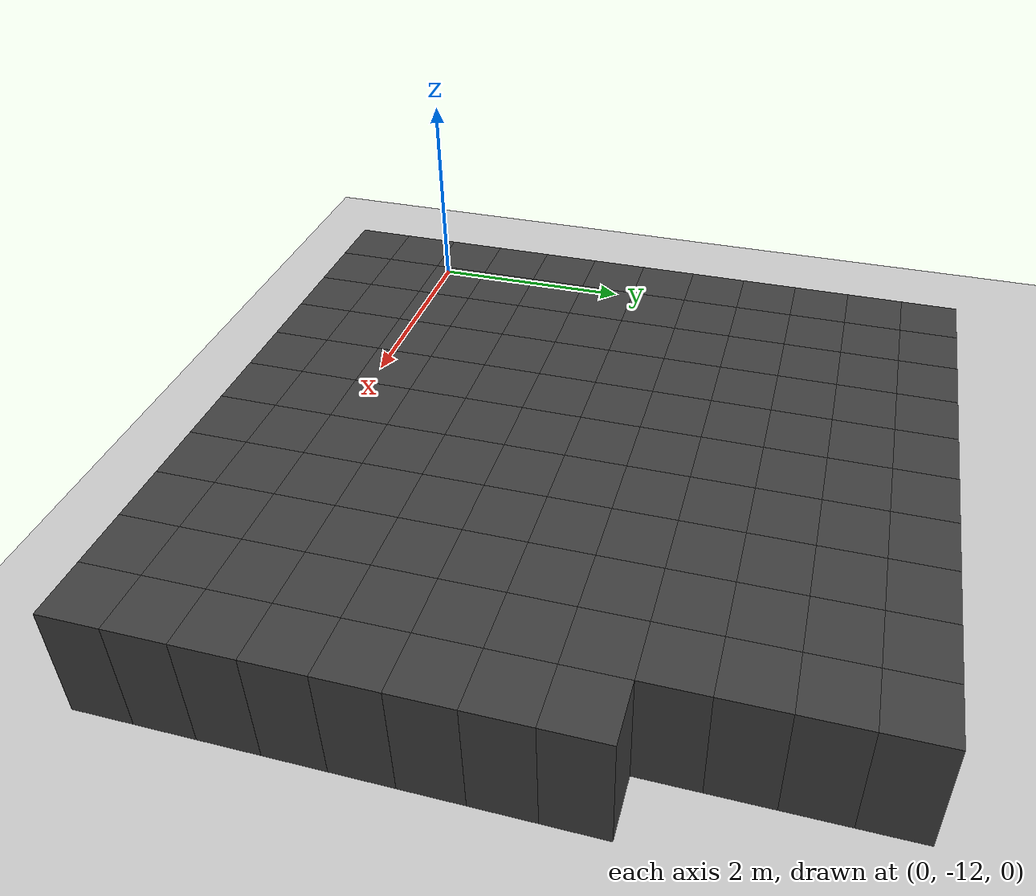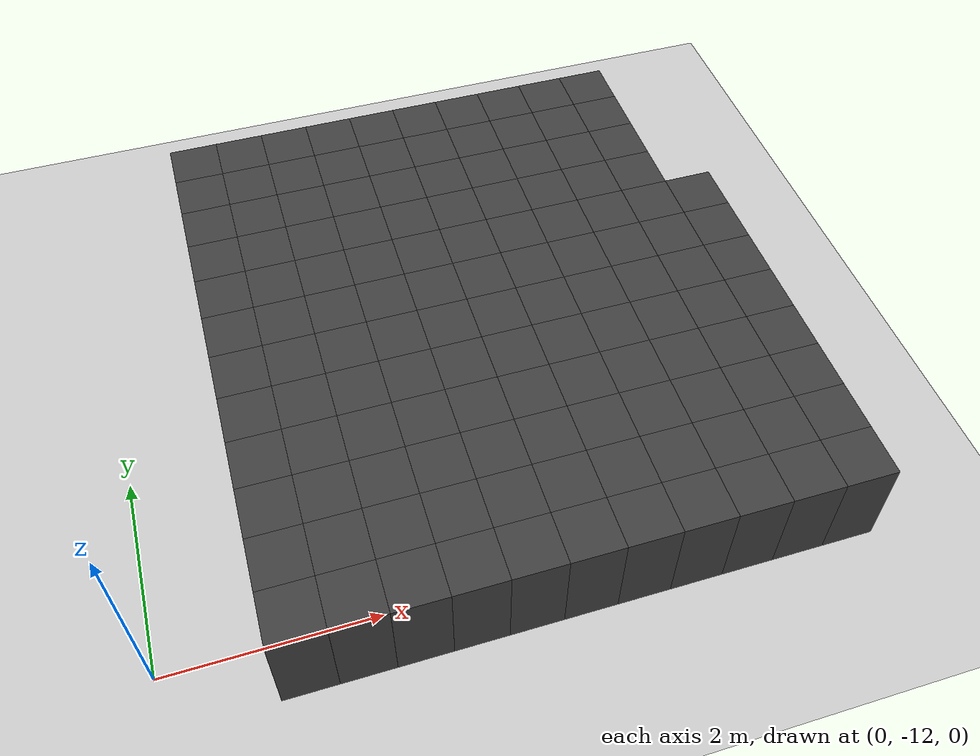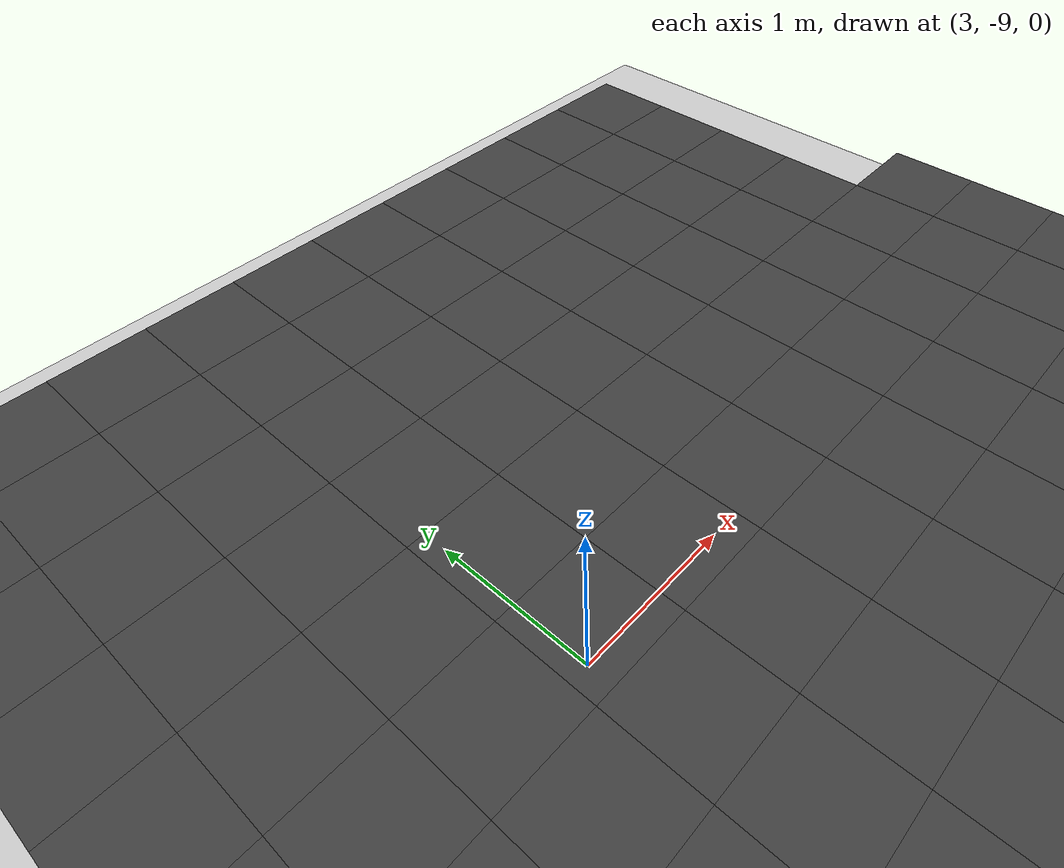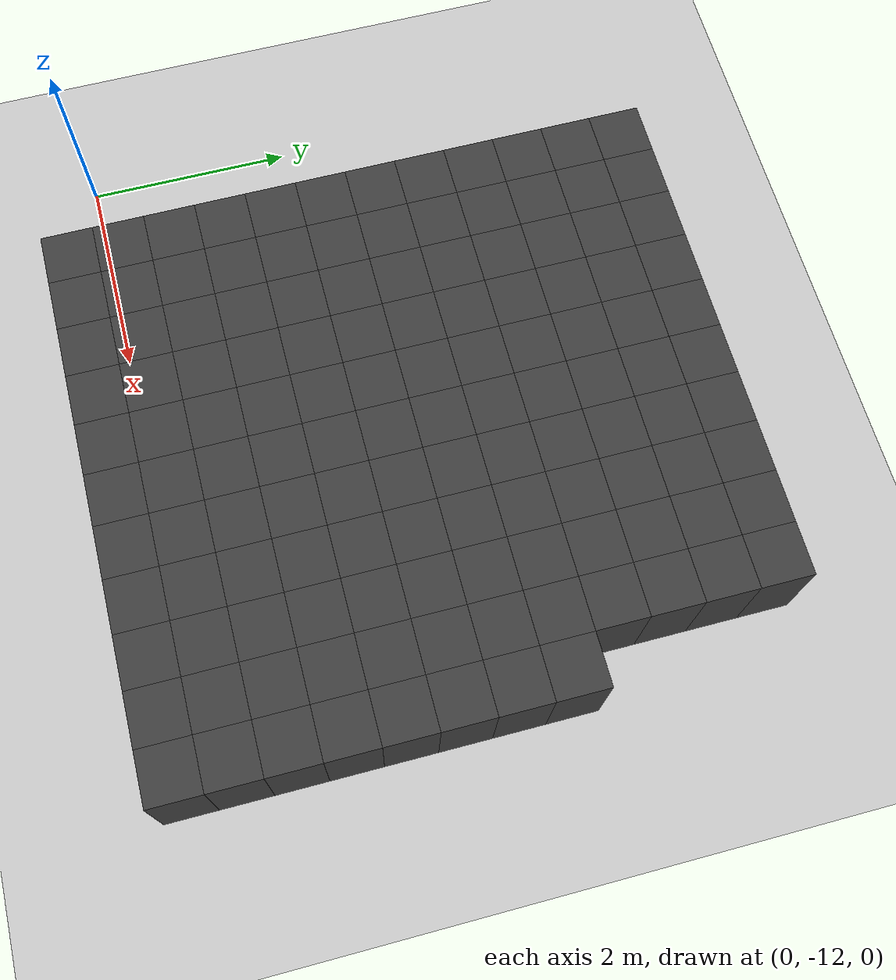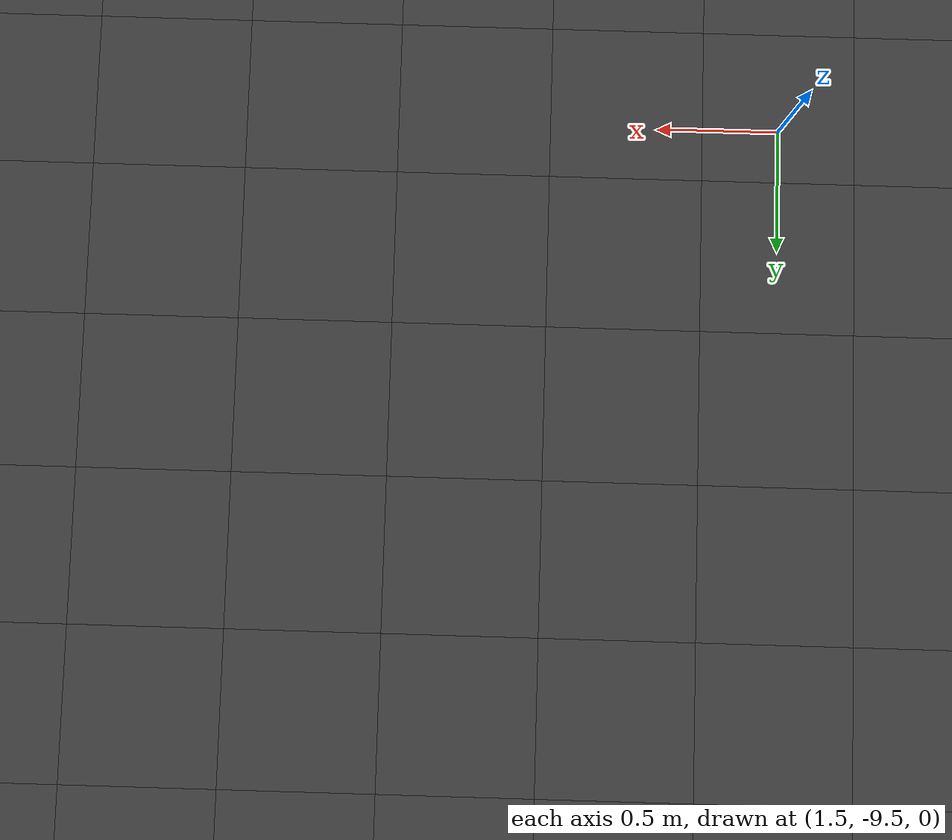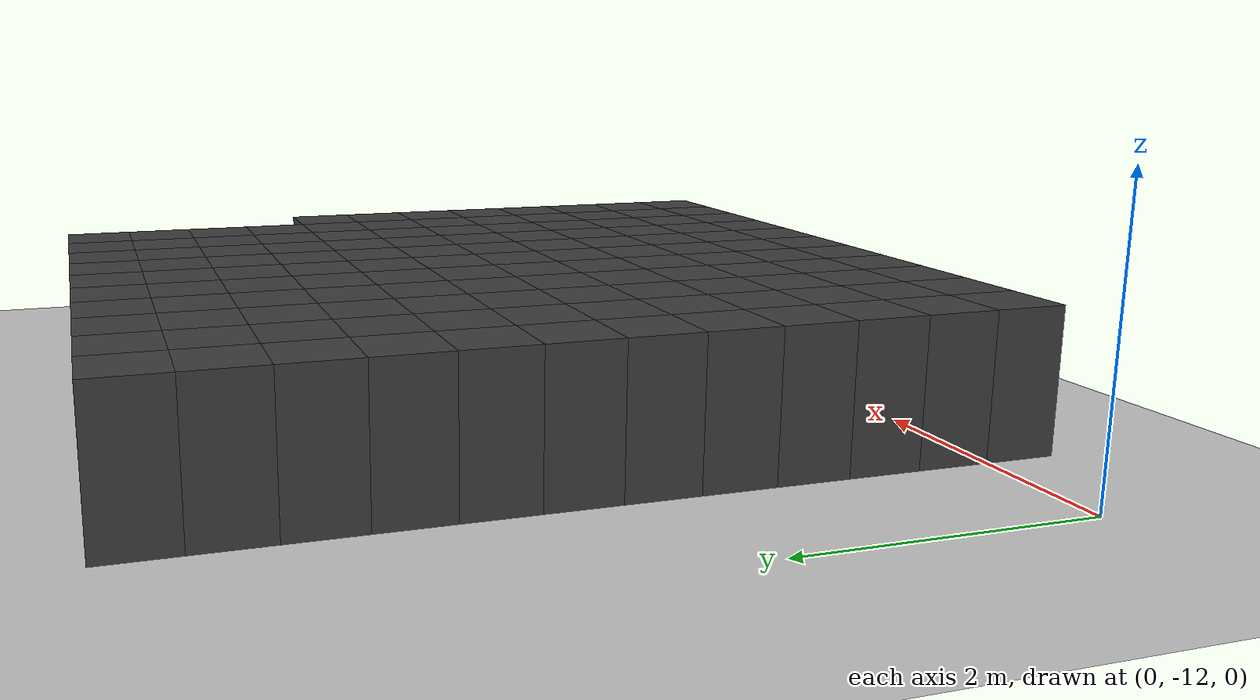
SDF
<sdf version="1.7">
 <world name="map_12356">
  <model name="ground_plane">
   <static>true</static>
   <link name="link">
    <collision name="collision">
     <geometry><plane><normal>0 0 1</normal><size>200 200</size></plane></geometry>
    </collision>
    <visual name="visual">
     <geometry><plane><normal>0 0 1</normal><size>200 200</size></plane></geometry>
     <material><ambient>0.8 0.8 0.8 1</ambient><diffuse>0.8 0.8 0.8 1</diffuse></material>
    </visual>
   </link>
  </model>
  <model name="maze_environment">
   <static>true</static>
   <link name="wall_1500">
    <pose>1.250 -6.750 0.500 0 0 0</pose>
    <collision name="col"><geometry><box><size>0.5 0.5 1.0</size></box></geometry></collision>
    <visual name="vis">
     <geometry><box><size>0.5 0.5 1.0</size></box></geometry>
     <material><ambient>0.15 0.15 0.15 1</ambient><diffuse>0.25 0.25 0.25 1</diffuse></material>
    </visual>
   </link>
   <link name="wall_1501">
    <pose>1.750 -6.750 0.500 0 0 0</pose>
    <collision name="col"><geometry><box><size>0.5 0.5 1.0</size></box></geometry></collision>
    <visual name="vis">
     <geometry><box><size>0.5 0.5 1.0</size></box></geometry>
     <material><ambient>0.15 0.15 0.15 1</ambient><diffuse>0.25 0.25 0.25 1</diffuse></material>
    </visual>
   </link>
   <link name="wall_1502">
    <pose>2.250 -6.750 0.500 0 0 0</pose>
    <collision name="col"><geometry><box><size>0.5 0.5 1.0</size></box></geometry></collision>
    <visual name="vis">
     <geometry><box><size>0.5 0.5 1.0</size></box></geometry>
     <material><ambient>0.15 0.15 0.15 1</ambient><diffuse>0.25 0.25 0.25 1</diffuse></material>
    </visual>
   </link>
   <link name="wall_1503">
    <pose>2.750 -6.750 0.500 0 0 0</pose>
    <collision name="col"><geometry><box><size>0.5 0.5 1.0</size></box></geometry></collision>
    <visual name="vis">
     <geometry><box><size>0.5 0.5 1.0</size></box></geometry>
     <material><ambient>0.15 0.15 0.15 1</ambient><diffuse>0.25 0.25 0.25 1</diffuse></material>
    </visual>
   </link>
   <link name="wall_1504">
    <pose>3.250 -6.750 0.500 0 0 0</pose>
    <collision name="col"><geometry><box><size>0.5 0.5 1.0</size></box></geometry></collision>
    <visual name="vis">
     <geometry><box><size>0.5 0.5 1.0</size></box></geometry>
     <material><ambient>0.15 0.15 0.15 1</ambient><diffuse>0.25 0.25 0.25 1</diffuse></material>
    </visual>
   </link>
   <link name="wall_1505">
    <pose>3.750 -6.750 0.500 0 0 0</pose>
    <collision name="col"><geometry><box><size>0.5 0.5 1.0</size></box></geometry></collision>
    <visual name="vis">
     <geometry><box><size>0.5 0.5 1.0</size></box></geometry>
     <material><ambient>0.15 0.15 0.15 1</ambient><diffuse>0.25 0.25 0.25 1</diffuse></material>
    </visual>
   </link>
   <link name="wall_1506">
    <pose>4.250 -6.750 0.500 0 0 0</pose>
    <collision name="col"><geometry><box><size>0.5 0.5 1.0</size></box></geometry></collision>
    <visual name="vis">
     <geometry><box><size>0.5 0.5 1.0</size></box></geometry>
     <material><ambient>0.15 0.15 0.15 1</ambient><diffuse>0.25 0.25 0.25 1</diffuse></material>
    </visual>
   </link>
   <link name="wall_1507">
    <pose>4.750 -6.750 0.500 0 0 0</pose>
    <collision name="col"><geometry><box><size>0.5 0.5 1.0</size></box></geometry></collision>
    <visual name="vis">
     <geometry><box><size>0.5 0.5 1.0</size></box></geometry>
     <material><ambient>0.15 0.15 0.15 1</ambient><diffuse>0.25 0.25 0.25 1</diffuse></material>
    </visual>
   </link>
   <link name="wall_1508">
    <pose>5.250 -6.750 0.500 0 0 0</pose>
    <collision name="col"><geometry><box><size>0.5 0.5 1.0</size></box></geometry></collision>
    <visual name="vis">
     <geometry><box><size>0.5 0.5 1.0</size></box></geometry>
     <material><ambient>0.15 0.15 0.15 1</ambient><diffuse>0.25 0.25 0.25 1</diffuse></material>
    </visual>
   </link>
   <link name="wall_1509">
    <pose>5.750 -6.750 0.500 0 0 0</pose>
    <collision name="col"><geometry><box><size>0.5 0.5 1.0</size></box></geometry></collision>
    <visual name="vis">
     <geometry><box><size>0.5 0.5 1.0</size></box></geometry>
     <material><ambient>0.15 0.15 0.15 1</ambient><diffuse>0.25 0.25 0.25 1</diffuse></material>
    </visual>
   </link>
   <link name="wall_1541">
    <pose>1.250 -7.250 0.500 0 0 0</pose>
    <collision name="col"><geometry><box><size>0.5 0.5 1.0</size></box></geometry></collision>
    <visual name="vis">
     <geometry><box><size>0.5 0.5 1.0</size></box></geometry>
     <material><ambient>0.15 0.15 0.15 1</ambient><diffuse>0.25 0.25 0.25 1</diffuse></material>
    </visual>
   </link>
   <link name="wall_1542">
    <pose>1.750 -7.250 0.500 0 0 0</pose>
    <collision name="col"><geometry><box><size>0.5 0.5 1.0</size></box></geometry></collision>
    <visual name="vis">
     <geometry><box><size>0.5 0.5 1.0</size></box></geometry>
     <material><ambient>0.15 0.15 0.15 1</ambient><diffuse>0.25 0.25 0.25 1</diffuse></material>
    </visual>
   </link>
   <link name="wall_1543">
    <pose>2.250 -7.250 0.500 0 0 0</pose>
    <collision name="col"><geometry><box><size>0.5 0.5 1.0</size></box></geometry></collision>
    <visual name="vis">
     <geometry><box><size>0.5 0.5 1.0</size></box></geometry>
     <material><ambient>0.15 0.15 0.15 1</ambient><diffuse>0.25 0.25 0.25 1</diffuse></material>
    </visual>
   </link>
   <link name="wall_1544">
    <pose>2.750 -7.250 0.500 0 0 0</pose>
    <collision name="col"><geometry><box><size>0.5 0.5 1.0</size></box></geometry></collision>
    <visual name="vis">
     <geometry><box><size>0.5 0.5 1.0</size></box></geometry>
     <material><ambient>0.15 0.15 0.15 1</ambient><diffuse>0.25 0.25 0.25 1</diffuse></material>
    </visual>
   </link>
   <link name="wall_1545">
    <pose>3.250 -7.250 0.500 0 0 0</pose>
    <collision name="col"><geometry><box><size>0.5 0.5 1.0</size></box></geometry></collision>
    <visual name="vis">
     <geometry><box><size>0.5 0.5 1.0</size></box></geometry>
     <material><ambient>0.15 0.15 0.15 1</ambient><diffuse>0.25 0.25 0.25 1</diffuse></material>
    </visual>
   </link>
   <link name="wall_1546">
    <pose>3.750 -7.250 0.500 0 0 0</pose>
    <collision name="col"><geometry><box><size>0.5 0.5 1.0</size></box></geometry></collision>
    <visual name="vis">
     <geometry><box><size>0.5 0.5 1.0</size></box></geometry>
     <material><ambient>0.15 0.15 0.15 1</ambient><diffuse>0.25 0.25 0.25 1</diffuse></material>
    </visual>
   </link>
   <link name="wall_1547">
    <pose>4.250 -7.250 0.500 0 0 0</pose>
    <collision name="col"><geometry><box><size>0.5 0.5 1.0</size></box></geometry></collision>
    <visual name="vis">
     <geometry><box><size>0.5 0.5 1.0</size></box></geometry>
     <material><ambient>0.15 0.15 0.15 1</ambient><diffuse>0.25 0.25 0.25 1</diffuse></material>
    </visual>
   </link>
   <link name="wall_1548">
    <pose>4.750 -7.250 0.500 0 0 0</pose>
    <collision name="col"><geometry><box><size>0.5 0.5 1.0</size></box></geometry></collision>
    <visual name="vis">
     <geometry><box><size>0.5 0.5 1.0</size></box></geometry>
     <material><ambient>0.15 0.15 0.15 1</ambient><diffuse>0.25 0.25 0.25 1</diffuse></material>
    </visual>
   </link>
   <link name="wall_1549">
    <pose>5.250 -7.250 0.500 0 0 0</pose>
    <collision name="col"><geometry><box><size>0.5 0.5 1.0</size></box></geometry></collision>
    <visual name="vis">
     <geometry><box><size>0.5 0.5 1.0</size></box></geometry>
     <material><ambient>0.15 0.15 0.15 1</ambient><diffuse>0.25 0.25 0.25 1</diffuse></material>
    </visual>
   </link>
   <link name="wall_1550">
    <pose>5.750 -7.250 0.500 0 0 0</pose>
    <collision name="col"><geometry><box><size>0.5 0.5 1.0</size></box></geometry></collision>
    <visual name="vis">
     <geometry><box><size>0.5 0.5 1.0</size></box></geometry>
     <material><ambient>0.15 0.15 0.15 1</ambient><diffuse>0.25 0.25 0.25 1</diffuse></material>
    </visual>
   </link>
   <link name="wall_1586">
    <pose>1.250 -7.750 0.500 0 0 0</pose>
    <collision name="col"><geometry><box><size>0.5 0.5 1.0</size></box></geometry></collision>
    <visual name="vis">
     <geometry><box><size>0.5 0.5 1.0</size></box></geometry>
     <material><ambient>0.15 0.15 0.15 1</ambient><diffuse>0.25 0.25 0.25 1</diffuse></material>
    </visual>
   </link>
   <link name="wall_1587">
    <pose>1.750 -7.750 0.500 0 0 0</pose>
    <collision name="col"><geometry><box><size>0.5 0.5 1.0</size></box></geometry></collision>
    <visual name="vis">
     <geometry><box><size>0.5 0.5 1.0</size></box></geometry>
     <material><ambient>0.15 0.15 0.15 1</ambient><diffuse>0.25 0.25 0.25 1</diffuse></material>
    </visual>
   </link>
   <link name="wall_1588">
    <pose>2.250 -7.750 0.500 0 0 0</pose>
    <collision name="col"><geometry><box><size>0.5 0.5 1.0</size></box></geometry></collision>
    <visual name="vis">
     <geometry><box><size>0.5 0.5 1.0</size></box></geometry>
     <material><ambient>0.15 0.15 0.15 1</ambient><diffuse>0.25 0.25 0.25 1</diffuse></material>
    </visual>
   </link>
   <link name="wall_1589">
    <pose>2.750 -7.750 0.500 0 0 0</pose>
    <collision name="col"><geometry><box><size>0.5 0.5 1.0</size></box></geometry></collision>
    <visual name="vis">
     <geometry><box><size>0.5 0.5 1.0</size></box></geometry>
     <material><ambient>0.15 0.15 0.15 1</ambient><diffuse>0.25 0.25 0.25 1</diffuse></material>
    </visual>
   </link>
   <link name="wall_1590">
    <pose>3.250 -7.750 0.500 0 0 0</pose>
    <collision name="col"><geometry><box><size>0.5 0.5 1.0</size></box></geometry></collision>
    <visual name="vis">
     <geometry><box><size>0.5 0.5 1.0</size></box></geometry>
     <material><ambient>0.15 0.15 0.15 1</ambient><diffuse>0.25 0.25 0.25 1</diffuse></material>
    </visual>
   </link>
   <link name="wall_1591">
    <pose>3.750 -7.750 0.500 0 0 0</pose>
    <collision name="col"><geometry><box><size>0.5 0.5 1.0</size></box></geometry></collision>
    <visual name="vis">
     <geometry><box><size>0.5 0.5 1.0</size></box></geometry>
     <material><ambient>0.15 0.15 0.15 1</ambient><diffuse>0.25 0.25 0.25 1</diffuse></material>
    </visual>
   </link>
   <link name="wall_1592">
    <pose>4.250 -7.750 0.500 0 0 0</pose>
    <collision name="col"><geometry><box><size>0.5 0.5 1.0</size></box></geometry></collision>
    <visual name="vis">
     <geometry><box><size>0.5 0.5 1.0</size></box></geometry>
     <material><ambient>0.15 0.15 0.15 1</ambient><diffuse>0.25 0.25 0.25 1</diffuse></material>
    </visual>
   </link>
   <link name="wall_1593">
    <pose>4.750 -7.750 0.500 0 0 0</pose>
    <collision name="col"><geometry><box><size>0.5 0.5 1.0</size></box></geometry></collision>
    <visual name="vis">
     <geometry><box><size>0.5 0.5 1.0</size></box></geometry>
     <material><ambient>0.15 0.15 0.15 1</ambient><diffuse>0.25 0.25 0.25 1</diffuse></material>
    </visual>
   </link>
   <link name="wall_1594">
    <pose>5.250 -7.750 0.500 0 0 0</pose>
    <collision name="col"><geometry><box><size>0.5 0.5 1.0</size></box></geometry></collision>
    <visual name="vis">
     <geometry><box><size>0.5 0.5 1.0</size></box></geometry>
     <material><ambient>0.15 0.15 0.15 1</ambient><diffuse>0.25 0.25 0.25 1</diffuse></material>
    </visual>
   </link>
   <link name="wall_1595">
    <pose>5.750 -7.750 0.500 0 0 0</pose>
    <collision name="col"><geometry><box><size>0.5 0.5 1.0</size></box></geometry></collision>
    <visual name="vis">
     <geometry><box><size>0.5 0.5 1.0</size></box></geometry>
     <material><ambient>0.15 0.15 0.15 1</ambient><diffuse>0.25 0.25 0.25 1</diffuse></material>
    </visual>
   </link>
   <link name="wall_1635">
    <pose>1.250 -8.250 0.500 0 0 0</pose>
    <collision name="col"><geometry><box><size>0.5 0.5 1.0</size></box></geometry></collision>
    <visual name="vis">
     <geometry><box><size>0.5 0.5 1.0</size></box></geometry>
     <material><ambient>0.15 0.15 0.15 1</ambient><diffuse>0.25 0.25 0.25 1</diffuse></material>
    </visual>
   </link>
   <link name="wall_1636">
    <pose>1.750 -8.250 0.500 0 0 0</pose>
    <collision name="col"><geometry><box><size>0.5 0.5 1.0</size></box></geometry></collision>
    <visual name="vis">
     <geometry><box><size>0.5 0.5 1.0</size></box></geometry>
     <material><ambient>0.15 0.15 0.15 1</ambient><diffuse>0.25 0.25 0.25 1</diffuse></material>
    </visual>
   </link>
   <link name="wall_1637">
    <pose>2.250 -8.250 0.500 0 0 0</pose>
    <collision name="col"><geometry><box><size>0.5 0.5 1.0</size></box></geometry></collision>
    <visual name="vis">
     <geometry><box><size>0.5 0.5 1.0</size></box></geometry>
     <material><ambient>0.15 0.15 0.15 1</ambient><diffuse>0.25 0.25 0.25 1</diffuse></material>
    </visual>
   </link>
   <link name="wall_1638">
    <pose>2.750 -8.250 0.500 0 0 0</pose>
    <collision name="col"><geometry><box><size>0.5 0.5 1.0</size></box></geometry></collision>
    <visual name="vis">
     <geometry><box><size>0.5 0.5 1.0</size></box></geometry>
     <material><ambient>0.15 0.15 0.15 1</ambient><diffuse>0.25 0.25 0.25 1</diffuse></material>
    </visual>
   </link>
   <link name="wall_1639">
    <pose>3.250 -8.250 0.500 0 0 0</pose>
    <collision name="col"><geometry><box><size>0.5 0.5 1.0</size></box></geometry></collision>
    <visual name="vis">
     <geometry><box><size>0.5 0.5 1.0</size></box></geometry>
     <material><ambient>0.15 0.15 0.15 1</ambient><diffuse>0.25 0.25 0.25 1</diffuse></material>
    </visual>
   </link>
   <link name="wall_1640">
    <pose>3.750 -8.250 0.500 0 0 0</pose>
    <collision name="col"><geometry><box><size>0.5 0.5 1.0</size></box></geometry></collision>
    <visual name="vis">
     <geometry><box><size>0.5 0.5 1.0</size></box></geometry>
     <material><ambient>0.15 0.15 0.15 1</ambient><diffuse>0.25 0.25 0.25 1</diffuse></material>
    </visual>
   </link>
   <link name="wall_1641">
    <pose>4.250 -8.250 0.500 0 0 0</pose>
    <collision name="col"><geometry><box><size>0.5 0.5 1.0</size></box></geometry></collision>
    <visual name="vis">
     <geometry><box><size>0.5 0.5 1.0</size></box></geometry>
     <material><ambient>0.15 0.15 0.15 1</ambient><diffuse>0.25 0.25 0.25 1</diffuse></material>
    </visual>
   </link>
   <link name="wall_1642">
    <pose>4.750 -8.250 0.500 0 0 0</pose>
    <collision name="col"><geometry><box><size>0.5 0.5 1.0</size></box></geometry></collision>
    <visual name="vis">
     <geometry><box><size>0.5 0.5 1.0</size></box></geometry>
     <material><ambient>0.15 0.15 0.15 1</ambient><diffuse>0.25 0.25 0.25 1</diffuse></material>
    </visual>
   </link>
   <link name="wall_1643">
    <pose>5.250 -8.250 0.500 0 0 0</pose>
    <collision name="col"><geometry><box><size>0.5 0.5 1.0</size></box></geometry></collision>
    <visual name="vis">
     <geometry><box><size>0.5 0.5 1.0</size></box></geometry>
     <material><ambient>0.15 0.15 0.15 1</ambient><diffuse>0.25 0.25 0.25 1</diffuse></material>
    </visual>
   </link>
   <link name="wall_1644">
    <pose>5.750 -8.250 0.500 0 0 0</pose>
    <collision name="col"><geometry><box><size>0.5 0.5 1.0</size></box></geometry></collision>
    <visual name="vis">
     <geometry><box><size>0.5 0.5 1.0</size></box></geometry>
     <material><ambient>0.15 0.15 0.15 1</ambient><diffuse>0.25 0.25 0.25 1</diffuse></material>
    </visual>
   </link>
   <link name="wall_1684">
    <pose>1.250 -8.750 0.500 0 0 0</pose>
    <collision name="col"><geometry><box><size>0.5 0.5 1.0</size></box></geometry></collision>
    <visual name="vis">
     <geometry><box><size>0.5 0.5 1.0</size></box></geometry>
     <material><ambient>0.15 0.15 0.15 1</ambient><diffuse>0.25 0.25 0.25 1</diffuse></material>
    </visual>
   </link>
   <link name="wall_1685">
    <pose>1.750 -8.750 0.500 0 0 0</pose>
    <collision name="col"><geometry><box><size>0.5 0.5 1.0</size></box></geometry></collision>
    <visual name="vis">
     <geometry><box><size>0.5 0.5 1.0</size></box></geometry>
     <material><ambient>0.15 0.15 0.15 1</ambient><diffuse>0.25 0.25 0.25 1</diffuse></material>
    </visual>
   </link>
   <link name="wall_1686">
    <pose>2.250 -8.750 0.500 0 0 0</pose>
    <collision name="col"><geometry><box><size>0.5 0.5 1.0</size></box></geometry></collision>
    <visual name="vis">
     <geometry><box><size>0.5 0.5 1.0</size></box></geometry>
     <material><ambient>0.15 0.15 0.15 1</ambient><diffuse>0.25 0.25 0.25 1</diffuse></material>
    </visual>
   </link>
   <link name="wall_1687">
    <pose>2.750 -8.750 0.500 0 0 0</pose>
    <collision name="col"><geometry><box><size>0.5 0.5 1.0</size></box></geometry></collision>
    <visual name="vis">
     <geometry><box><size>0.5 0.5 1.0</size></box></geometry>
     <material><ambient>0.15 0.15 0.15 1</ambient><diffuse>0.25 0.25 0.25 1</diffuse></material>
    </visual>
   </link>
   <link name="wall_1688">
    <pose>3.250 -8.750 0.500 0 0 0</pose>
    <collision name="col"><geometry><box><size>0.5 0.5 1.0</size></box></geometry></collision>
    <visual name="vis">
     <geometry><box><size>0.5 0.5 1.0</size></box></geometry>
     <material><ambient>0.15 0.15 0.15 1</ambient><diffuse>0.25 0.25 0.25 1</diffuse></material>
    </visual>
   </link>
   <link name="wall_1689">
    <pose>3.750 -8.750 0.500 0 0 0</pose>
    <collision name="col"><geometry><box><size>0.5 0.5 1.0</size></box></geometry></collision>
    <visual name="vis">
     <geometry><box><size>0.5 0.5 1.0</size></box></geometry>
     <material><ambient>0.15 0.15 0.15 1</ambient><diffuse>0.25 0.25 0.25 1</diffuse></material>
    </visual>
   </link>
   <link name="wall_1690">
    <pose>4.250 -8.750 0.500 0 0 0</pose>
    <collision name="col"><geometry><box><size>0.5 0.5 1.0</size></box></geometry></collision>
    <visual name="vis">
     <geometry><box><size>0.5 0.5 1.0</size></box></geometry>
     <material><ambient>0.15 0.15 0.15 1</ambient><diffuse>0.25 0.25 0.25 1</diffuse></material>
    </visual>
   </link>
   <link name="wall_1691">
    <pose>4.750 -8.750 0.500 0 0 0</pose>
    <collision name="col"><geometry><box><size>0.5 0.5 1.0</size></box></geometry></collision>
    <visual name="vis">
     <geometry><box><size>0.5 0.5 1.0</size></box></geometry>
     <material><ambient>0.15 0.15 0.15 1</ambient><diffuse>0.25 0.25 0.25 1</diffuse></material>
    </visual>
   </link>
   <link name="wall_1692">
    <pose>5.250 -8.750 0.500 0 0 0</pose>
    <collision name="col"><geometry><box><size>0.5 0.5 1.0</size></box></geometry></collision>
    <visual name="vis">
     <geometry><box><size>0.5 0.5 1.0</size></box></geometry>
     <material><ambient>0.15 0.15 0.15 1</ambient><diffuse>0.25 0.25 0.25 1</diffuse></material>
    </visual>
   </link>
   <link name="wall_1693">
    <pose>5.750 -8.750 0.500 0 0 0</pose>
    <collision name="col"><geometry><box><size>0.5 0.5 1.0</size></box></geometry></collision>
    <visual name="vis">
     <geometry><box><size>0.5 0.5 1.0</size></box></geometry>
     <material><ambient>0.15 0.15 0.15 1</ambient><diffuse>0.25 0.25 0.25 1</diffuse></material>
    </visual>
   </link>
   <link name="wall_1694">
    <pose>6.250 -8.750 0.500 0 0 0</pose>
    <collision name="col"><geometry><box><size>0.5 0.5 1.0</size></box></geometry></collision>
    <visual name="vis">
     <geometry><box><size>0.5 0.5 1.0</size></box></geometry>
     <material><ambient>0.15 0.15 0.15 1</ambient><diffuse>0.25 0.25 0.25 1</diffuse></material>
    </visual>
   </link>
   <link name="wall_1733">
    <pose>1.250 -9.250 0.500 0 0 0</pose>
    <collision name="col"><geometry><box><size>0.5 0.5 1.0</size></box></geometry></collision>
    <visual name="vis">
     <geometry><box><size>0.5 0.5 1.0</size></box></geometry>
     <material><ambient>0.15 0.15 0.15 1</ambient><diffuse>0.25 0.25 0.25 1</diffuse></material>
    </visual>
   </link>
   <link name="wall_1734">
    <pose>1.750 -9.250 0.500 0 0 0</pose>
    <collision name="col"><geometry><box><size>0.5 0.5 1.0</size></box></geometry></collision>
    <visual name="vis">
     <geometry><box><size>0.5 0.5 1.0</size></box></geometry>
     <material><ambient>0.15 0.15 0.15 1</ambient><diffuse>0.25 0.25 0.25 1</diffuse></material>
    </visual>
   </link>
   <link name="wall_1735">
    <pose>2.250 -9.250 0.500 0 0 0</pose>
    <collision name="col"><geometry><box><size>0.5 0.5 1.0</size></box></geometry></collision>
    <visual name="vis">
     <geometry><box><size>0.5 0.5 1.0</size></box></geometry>
     <material><ambient>0.15 0.15 0.15 1</ambient><diffuse>0.25 0.25 0.25 1</diffuse></material>
    </visual>
   </link>
   <link name="wall_1736">
    <pose>2.750 -9.250 0.500 0 0 0</pose>
    <collision name="col"><geometry><box><size>0.5 0.5 1.0</size></box></geometry></collision>
    <visual name="vis">
     <geometry><box><size>0.5 0.5 1.0</size></box></geometry>
     <material><ambient>0.15 0.15 0.15 1</ambient><diffuse>0.25 0.25 0.25 1</diffuse></material>
    </visual>
   </link>
   <link name="wall_1737">
    <pose>3.250 -9.250 0.500 0 0 0</pose>
    <collision name="col"><geometry><box><size>0.5 0.5 1.0</size></box></geometry></collision>
    <visual name="vis">
     <geometry><box><size>0.5 0.5 1.0</size></box></geometry>
     <material><ambient>0.15 0.15 0.15 1</ambient><diffuse>0.25 0.25 0.25 1</diffuse></material>
    </visual>
   </link>
   <link name="wall_1738">
    <pose>3.750 -9.250 0.500 0 0 0</pose>
    <collision name="col"><geometry><box><size>0.5 0.5 1.0</size></box></geometry></collision>
    <visual name="vis">
     <geometry><box><size>0.5 0.5 1.0</size></box></geometry>
     <material><ambient>0.15 0.15 0.15 1</ambient><diffuse>0.25 0.25 0.25 1</diffuse></material>
    </visual>
   </link>
   <link name="wall_1739">
    <pose>4.250 -9.250 0.500 0 0 0</pose>
    <collision name="col"><geometry><box><size>0.5 0.5 1.0</size></box></geometry></collision>
    <visual name="vis">
     <geometry><box><size>0.5 0.5 1.0</size></box></geometry>
     <material><ambient>0.15 0.15 0.15 1</ambient><diffuse>0.25 0.25 0.25 1</diffuse></material>
    </visual>
   </link>
   <link name="wall_1740">
    <pose>4.750 -9.250 0.500 0 0 0</pose>
    <collision name="col"><geometry><box><size>0.5 0.5 1.0</size></box></geometry></collision>
    <visual name="vis">
     <geometry><box><size>0.5 0.5 1.0</size></box></geometry>
     <material><ambient>0.15 0.15 0.15 1</ambient><diffuse>0.25 0.25 0.25 1</diffuse></material>
    </visual>
   </link>
   <link name="wall_1741">
    <pose>5.250 -9.250 0.500 0 0 0</pose>
    <collision name="col"><geometry><box><size>0.5 0.5 1.0</size></box></geometry></collision>
    <visual name="vis">
     <geometry><box><size>0.5 0.5 1.0</size></box></geometry>
     <material><ambient>0.15 0.15 0.15 1</ambient><diffuse>0.25 0.25 0.25 1</diffuse></material>
    </visual>
   </link>
   <link name="wall_1742">
    <pose>5.750 -9.250 0.500 0 0 0</pose>
    <collision name="col"><geometry><box><size>0.5 0.5 1.0</size></box></geometry></collision>
    <visual name="vis">
     <geometry><box><size>0.5 0.5 1.0</size></box></geometry>
     <material><ambient>0.15 0.15 0.15 1</ambient><diffuse>0.25 0.25 0.25 1</diffuse></material>
    </visual>
   </link>
   <link name="wall_1743">
    <pose>6.250 -9.250 0.500 0 0 0</pose>
    <collision name="col"><geometry><box><size>0.5 0.5 1.0</size></box></geometry></collision>
    <visual name="vis">
     <geometry><box><size>0.5 0.5 1.0</size></box></geometry>
     <material><ambient>0.15 0.15 0.15 1</ambient><diffuse>0.25 0.25 0.25 1</diffuse></material>
    </visual>
   </link>
   <link name="wall_1782">
    <pose>1.250 -9.750 0.500 0 0 0</pose>
    <collision name="col"><geometry><box><size>0.5 0.5 1.0</size></box></geometry></collision>
    <visual name="vis">
     <geometry><box><size>0.5 0.5 1.0</size></box></geometry>
     <material><ambient>0.15 0.15 0.15 1</ambient><diffuse>0.25 0.25 0.25 1</diffuse></material>
    </visual>
   </link>
   <link name="wall_1783">
    <pose>1.750 -9.750 0.500 0 0 0</pose>
    <collision name="col"><geometry><box><size>0.5 0.5 1.0</size></box></geometry></collision>
    <visual name="vis">
     <geometry><box><size>0.5 0.5 1.0</size></box></geometry>
     <material><ambient>0.15 0.15 0.15 1</ambient><diffuse>0.25 0.25 0.25 1</diffuse></material>
    </visual>
   </link>
   <link name="wall_1784">
    <pose>2.250 -9.750 0.500 0 0 0</pose>
    <collision name="col"><geometry><box><size>0.5 0.5 1.0</size></box></geometry></collision>
    <visual name="vis">
     <geometry><box><size>0.5 0.5 1.0</size></box></geometry>
     <material><ambient>0.15 0.15 0.15 1</ambient><diffuse>0.25 0.25 0.25 1</diffuse></material>
    </visual>
   </link>
   <link name="wall_1785">
    <pose>2.750 -9.750 0.500 0 0 0</pose>
    <collision name="col"><geometry><box><size>0.5 0.5 1.0</size></box></geometry></collision>
    <visual name="vis">
     <geometry><box><size>0.5 0.5 1.0</size></box></geometry>
     <material><ambient>0.15 0.15 0.15 1</ambient><diffuse>0.25 0.25 0.25 1</diffuse></material>
    </visual>
   </link>
   <link name="wall_1786">
    <pose>3.250 -9.750 0.500 0 0 0</pose>
    <collision name="col"><geometry><box><size>0.5 0.5 1.0</size></box></geometry></collision>
    <visual name="vis">
     <geometry><box><size>0.5 0.5 1.0</size></box></geometry>
     <material><ambient>0.15 0.15 0.15 1</ambient><diffuse>0.25 0.25 0.25 1</diffuse></material>
    </visual>
   </link>
   <link name="wall_1787">
    <pose>3.750 -9.750 0.500 0 0 0</pose>
    <collision name="col"><geometry><box><size>0.5 0.5 1.0</size></box></geometry></collision>
    <visual name="vis">
     <geometry><box><size>0.5 0.5 1.0</size></box></geometry>
     <material><ambient>0.15 0.15 0.15 1</ambient><diffuse>0.25 0.25 0.25 1</diffuse></material>
    </visual>
   </link>
   <link name="wall_1788">
    <pose>4.250 -9.750 0.500 0 0 0</pose>
    <collision name="col"><geometry><box><size>0.5 0.5 1.0</size></box></geometry></collision>
    <visual name="vis">
     <geometry><box><size>0.5 0.5 1.0</size></box></geometry>
     <material><ambient>0.15 0.15 0.15 1</ambient><diffuse>0.25 0.25 0.25 1</diffuse></material>
    </visual>
   </link>
   <link name="wall_1789">
    <pose>4.750 -9.750 0.500 0 0 0</pose>
    <collision name="col"><geometry><box><size>0.5 0.5 1.0</size></box></geometry></collision>
    <visual name="vis">
     <geometry><box><size>0.5 0.5 1.0</size></box></geometry>
     <material><ambient>0.15 0.15 0.15 1</ambient><diffuse>0.25 0.25 0.25 1</diffuse></material>
    </visual>
   </link>
   <link name="wall_1790">
    <pose>5.250 -9.750 0.500 0 0 0</pose>
    <collision name="col"><geometry><box><size>0.5 0.5 1.0</size></box></geometry></collision>
    <visual name="vis">
     <geometry><box><size>0.5 0.5 1.0</size></box></geometry>
     <material><ambient>0.15 0.15 0.15 1</ambient><diffuse>0.25 0.25 0.25 1</diffuse></material>
    </visual>
   </link>
   <link name="wall_1791">
    <pose>5.750 -9.750 0.500 0 0 0</pose>
    <collision name="col"><geometry><box><size>0.5 0.5 1.0</size></box></geometry></collision>
    <visual name="vis">
     <geometry><box><size>0.5 0.5 1.0</size></box></geometry>
     <material><ambient>0.15 0.15 0.15 1</ambient><diffuse>0.25 0.25 0.25 1</diffuse></material>
    </visual>
   </link>
   <link name="wall_1792">
    <pose>6.250 -9.750 0.500 0 0 0</pose>
    <collision name="col"><geometry><box><size>0.5 0.5 1.0</size></box></geometry></collision>
    <visual name="vis">
     <geometry><box><size>0.5 0.5 1.0</size></box></geometry>
     <material><ambient>0.15 0.15 0.15 1</ambient><diffuse>0.25 0.25 0.25 1</diffuse></material>
    </visual>
   </link>
   <link name="wall_1831">
    <pose>1.250 -10.250 0.500 0 0 0</pose>
    <collision name="col"><geometry><box><size>0.5 0.5 1.0</size></box></geometry></collision>
    <visual name="vis">
     <geometry><box><size>0.5 0.5 1.0</size></box></geometry>
     <material><ambient>0.15 0.15 0.15 1</ambient><diffuse>0.25 0.25 0.25 1</diffuse></material>
    </visual>
   </link>
   <link name="wall_1832">
    <pose>1.750 -10.250 0.500 0 0 0</pose>
    <collision name="col"><geometry><box><size>0.5 0.5 1.0</size></box></geometry></collision>
    <visual name="vis">
     <geometry><box><size>0.5 0.5 1.0</size></box></geometry>
     <material><ambient>0.15 0.15 0.15 1</ambient><diffuse>0.25 0.25 0.25 1</diffuse></material>
    </visual>
   </link>
   <link name="wall_1833">
    <pose>2.250 -10.250 0.500 0 0 0</pose>
    <collision name="col"><geometry><box><size>0.5 0.5 1.0</size></box></geometry></collision>
    <visual name="vis">
     <geometry><box><size>0.5 0.5 1.0</size></box></geometry>
     <material><ambient>0.15 0.15 0.15 1</ambient><diffuse>0.25 0.25 0.25 1</diffuse></material>
    </visual>
   </link>
   <link name="wall_1834">
    <pose>2.750 -10.250 0.500 0 0 0</pose>
    <collision name="col"><geometry><box><size>0.5 0.5 1.0</size></box></geometry></collision>
    <visual name="vis">
     <geometry><box><size>0.5 0.5 1.0</size></box></geometry>
     <material><ambient>0.15 0.15 0.15 1</ambient><diffuse>0.25 0.25 0.25 1</diffuse></material>
    </visual>
   </link>
   <link name="wall_1835">
    <pose>3.250 -10.250 0.500 0 0 0</pose>
    <collision name="col"><geometry><box><size>0.5 0.5 1.0</size></box></geometry></collision>
    <visual name="vis">
     <geometry><box><size>0.5 0.5 1.0</size></box></geometry>
     <material><ambient>0.15 0.15 0.15 1</ambient><diffuse>0.25 0.25 0.25 1</diffuse></material>
    </visual>
   </link>
   <link name="wall_1836">
    <pose>3.750 -10.250 0.500 0 0 0</pose>
    <collision name="col"><geometry><box><size>0.5 0.5 1.0</size></box></geometry></collision>
    <visual name="vis">
     <geometry><box><size>0.5 0.5 1.0</size></box></geometry>
     <material><ambient>0.15 0.15 0.15 1</ambient><diffuse>0.25 0.25 0.25 1</diffuse></material>
    </visual>
   </link>
   <link name="wall_1837">
    <pose>4.250 -10.250 0.500 0 0 0</pose>
    <collision name="col"><geometry><box><size>0.5 0.5 1.0</size></box></geometry></collision>
    <visual name="vis">
     <geometry><box><size>0.5 0.5 1.0</size></box></geometry>
     <material><ambient>0.15 0.15 0.15 1</ambient><diffuse>0.25 0.25 0.25 1</diffuse></material>
    </visual>
   </link>
   <link name="wall_1838">
    <pose>4.750 -10.250 0.500 0 0 0</pose>
    <collision name="col"><geometry><box><size>0.5 0.5 1.0</size></box></geometry></collision>
    <visual name="vis">
     <geometry><box><size>0.5 0.5 1.0</size></box></geometry>
     <material><ambient>0.15 0.15 0.15 1</ambient><diffuse>0.25 0.25 0.25 1</diffuse></material>
    </visual>
   </link>
   <link name="wall_1839">
    <pose>5.250 -10.250 0.500 0 0 0</pose>
    <collision name="col"><geometry><box><size>0.5 0.5 1.0</size></box></geometry></collision>
    <visual name="vis">
     <geometry><box><size>0.5 0.5 1.0</size></box></geometry>
     <material><ambient>0.15 0.15 0.15 1</ambient><diffuse>0.25 0.25 0.25 1</diffuse></material>
    </visual>
   </link>
   <link name="wall_1840">
    <pose>5.750 -10.250 0.500 0 0 0</pose>
    <collision name="col"><geometry><box><size>0.5 0.5 1.0</size></box></geometry></collision>
    <visual name="vis">
     <geometry><box><size>0.5 0.5 1.0</size></box></geometry>
     <material><ambient>0.15 0.15 0.15 1</ambient><diffuse>0.25 0.25 0.25 1</diffuse></material>
    </visual>
   </link>
   <link name="wall_1841">
    <pose>6.250 -10.250 0.500 0 0 0</pose>
    <collision name="col"><geometry><box><size>0.5 0.5 1.0</size></box></geometry></collision>
    <visual name="vis">
     <geometry><box><size>0.5 0.5 1.0</size></box></geometry>
     <material><ambient>0.15 0.15 0.15 1</ambient><diffuse>0.25 0.25 0.25 1</diffuse></material>
    </visual>
   </link>
   <link name="wall_1880">
    <pose>1.250 -10.750 0.500 0 0 0</pose>
    <collision name="col"><geometry><box><size>0.5 0.5 1.0</size></box></geometry></collision>
    <visual name="vis">
     <geometry><box><size>0.5 0.5 1.0</size></box></geometry>
     <material><ambient>0.15 0.15 0.15 1</ambient><diffuse>0.25 0.25 0.25 1</diffuse></material>
    </visual>
   </link>
   <link name="wall_1881">
    <pose>1.750 -10.750 0.500 0 0 0</pose>
    <collision name="col"><geometry><box><size>0.5 0.5 1.0</size></box></geometry></collision>
    <visual name="vis">
     <geometry><box><size>0.5 0.5 1.0</size></box></geometry>
     <material><ambient>0.15 0.15 0.15 1</ambient><diffuse>0.25 0.25 0.25 1</diffuse></material>
    </visual>
   </link>
   <link name="wall_1882">
    <pose>2.250 -10.750 0.500 0 0 0</pose>
    <collision name="col"><geometry><box><size>0.5 0.5 1.0</size></box></geometry></collision>
    <visual name="vis">
     <geometry><box><size>0.5 0.5 1.0</size></box></geometry>
     <material><ambient>0.15 0.15 0.15 1</ambient><diffuse>0.25 0.25 0.25 1</diffuse></material>
    </visual>
   </link>
   <link name="wall_1883">
    <pose>2.750 -10.750 0.500 0 0 0</pose>
    <collision name="col"><geometry><box><size>0.5 0.5 1.0</size></box></geometry></collision>
    <visual name="vis">
     <geometry><box><size>0.5 0.5 1.0</size></box></geometry>
     <material><ambient>0.15 0.15 0.15 1</ambient><diffuse>0.25 0.25 0.25 1</diffuse></material>
    </visual>
   </link>
   <link name="wall_1884">
    <pose>3.250 -10.750 0.500 0 0 0</pose>
    <collision name="col"><geometry><box><size>0.5 0.5 1.0</size></box></geometry></collision>
    <visual name="vis">
     <geometry><box><size>0.5 0.5 1.0</size></box></geometry>
     <material><ambient>0.15 0.15 0.15 1</ambient><diffuse>0.25 0.25 0.25 1</diffuse></material>
    </visual>
   </link>
   <link name="wall_1885">
    <pose>3.750 -10.750 0.500 0 0 0</pose>
    <collision name="col"><geometry><box><size>0.5 0.5 1.0</size></box></geometry></collision>
    <visual name="vis">
     <geometry><box><size>0.5 0.5 1.0</size></box></geometry>
     <material><ambient>0.15 0.15 0.15 1</ambient><diffuse>0.25 0.25 0.25 1</diffuse></material>
    </visual>
   </link>
   <link name="wall_1886">
    <pose>4.250 -10.750 0.500 0 0 0</pose>
    <collision name="col"><geometry><box><size>0.5 0.5 1.0</size></box></geometry></collision>
    <visual name="vis">
     <geometry><box><size>0.5 0.5 1.0</size></box></geometry>
     <material><ambient>0.15 0.15 0.15 1</ambient><diffuse>0.25 0.25 0.25 1</diffuse></material>
    </visual>
   </link>
   <link name="wall_1887">
    <pose>4.750 -10.750 0.500 0 0 0</pose>
    <collision name="col"><geometry><box><size>0.5 0.5 1.0</size></box></geometry></collision>
    <visual name="vis">
     <geometry><box><size>0.5 0.5 1.0</size></box></geometry>
     <material><ambient>0.15 0.15 0.15 1</ambient><diffuse>0.25 0.25 0.25 1</diffuse></material>
    </visual>
   </link>
   <link name="wall_1888">
    <pose>5.250 -10.750 0.500 0 0 0</pose>
    <collision name="col"><geometry><box><size>0.5 0.5 1.0</size></box></geometry></collision>
    <visual name="vis">
     <geometry><box><size>0.5 0.5 1.0</size></box></geometry>
     <material><ambient>0.15 0.15 0.15 1</ambient><diffuse>0.25 0.25 0.25 1</diffuse></material>
    </visual>
   </link>
   <link name="wall_1889">
    <pose>5.750 -10.750 0.500 0 0 0</pose>
    <collision name="col"><geometry><box><size>0.5 0.5 1.0</size></box></geometry></collision>
    <visual name="vis">
     <geometry><box><size>0.5 0.5 1.0</size></box></geometry>
     <material><ambient>0.15 0.15 0.15 1</ambient><diffuse>0.25 0.25 0.25 1</diffuse></material>
    </visual>
   </link>
   <link name="wall_1890">
    <pose>6.250 -10.750 0.500 0 0 0</pose>
    <collision name="col"><geometry><box><size>0.5 0.5 1.0</size></box></geometry></collision>
    <visual name="vis">
     <geometry><box><size>0.5 0.5 1.0</size></box></geometry>
     <material><ambient>0.15 0.15 0.15 1</ambient><diffuse>0.25 0.25 0.25 1</diffuse></material>
    </visual>
   </link>
   <link name="wall_1926">
    <pose>1.250 -11.250 0.500 0 0 0</pose>
    <collision name="col"><geometry><box><size>0.5 0.5 1.0</size></box></geometry></collision>
    <visual name="vis">
     <geometry><box><size>0.5 0.5 1.0</size></box></geometry>
     <material><ambient>0.15 0.15 0.15 1</ambient><diffuse>0.25 0.25 0.25 1</diffuse></material>
    </visual>
   </link>
   <link name="wall_1927">
    <pose>1.750 -11.250 0.500 0 0 0</pose>
    <collision name="col"><geometry><box><size>0.5 0.5 1.0</size></box></geometry></collision>
    <visual name="vis">
     <geometry><box><size>0.5 0.5 1.0</size></box></geometry>
     <material><ambient>0.15 0.15 0.15 1</ambient><diffuse>0.25 0.25 0.25 1</diffuse></material>
    </visual>
   </link>
   <link name="wall_1928">
    <pose>2.250 -11.250 0.500 0 0 0</pose>
    <collision name="col"><geometry><box><size>0.5 0.5 1.0</size></box></geometry></collision>
    <visual name="vis">
     <geometry><box><size>0.5 0.5 1.0</size></box></geometry>
     <material><ambient>0.15 0.15 0.15 1</ambient><diffuse>0.25 0.25 0.25 1</diffuse></material>
    </visual>
   </link>
   <link name="wall_1929">
    <pose>2.750 -11.250 0.500 0 0 0</pose>
    <collision name="col"><geometry><box><size>0.5 0.5 1.0</size></box></geometry></collision>
    <visual name="vis">
     <geometry><box><size>0.5 0.5 1.0</size></box></geometry>
     <material><ambient>0.15 0.15 0.15 1</ambient><diffuse>0.25 0.25 0.25 1</diffuse></material>
    </visual>
   </link>
   <link name="wall_1930">
    <pose>3.250 -11.250 0.500 0 0 0</pose>
    <collision name="col"><geometry><box><size>0.5 0.5 1.0</size></box></geometry></collision>
    <visual name="vis">
     <geometry><box><size>0.5 0.5 1.0</size></box></geometry>
     <material><ambient>0.15 0.15 0.15 1</ambient><diffuse>0.25 0.25 0.25 1</diffuse></material>
    </visual>
   </link>
   <link name="wall_1931">
    <pose>3.750 -11.250 0.500 0 0 0</pose>
    <collision name="col"><geometry><box><size>0.5 0.5 1.0</size></box></geometry></collision>
    <visual name="vis">
     <geometry><box><size>0.5 0.5 1.0</size></box></geometry>
     <material><ambient>0.15 0.15 0.15 1</ambient><diffuse>0.25 0.25 0.25 1</diffuse></material>
    </visual>
   </link>
   <link name="wall_1932">
    <pose>4.250 -11.250 0.500 0 0 0</pose>
    <collision name="col"><geometry><box><size>0.5 0.5 1.0</size></box></geometry></collision>
    <visual name="vis">
     <geometry><box><size>0.5 0.5 1.0</size></box></geometry>
     <material><ambient>0.15 0.15 0.15 1</ambient><diffuse>0.25 0.25 0.25 1</diffuse></material>
    </visual>
   </link>
   <link name="wall_1933">
    <pose>4.750 -11.250 0.500 0 0 0</pose>
    <collision name="col"><geometry><box><size>0.5 0.5 1.0</size></box></geometry></collision>
    <visual name="vis">
     <geometry><box><size>0.5 0.5 1.0</size></box></geometry>
     <material><ambient>0.15 0.15 0.15 1</ambient><diffuse>0.25 0.25 0.25 1</diffuse></material>
    </visual>
   </link>
   <link name="wall_1934">
    <pose>5.250 -11.250 0.500 0 0 0</pose>
    <collision name="col"><geometry><box><size>0.5 0.5 1.0</size></box></geometry></collision>
    <visual name="vis">
     <geometry><box><size>0.5 0.5 1.0</size></box></geometry>
     <material><ambient>0.15 0.15 0.15 1</ambient><diffuse>0.25 0.25 0.25 1</diffuse></material>
    </visual>
   </link>
   <link name="wall_1935">
    <pose>5.750 -11.250 0.500 0 0 0</pose>
    <collision name="col"><geometry><box><size>0.5 0.5 1.0</size></box></geometry></collision>
    <visual name="vis">
     <geometry><box><size>0.5 0.5 1.0</size></box></geometry>
     <material><ambient>0.15 0.15 0.15 1</ambient><diffuse>0.25 0.25 0.25 1</diffuse></material>
    </visual>
   </link>
   <link name="wall_1936">
    <pose>6.250 -11.250 0.500 0 0 0</pose>
    <collision name="col"><geometry><box><size>0.5 0.5 1.0</size></box></geometry></collision>
    <visual name="vis">
     <geometry><box><size>0.5 0.5 1.0</size></box></geometry>
     <material><ambient>0.15 0.15 0.15 1</ambient><diffuse>0.25 0.25 0.25 1</diffuse></material>
    </visual>
   </link>
   <link name="wall_1972">
    <pose>1.250 -11.750 0.500 0 0 0</pose>
    <collision name="col"><geometry><box><size>0.5 0.5 1.0</size></box></geometry></collision>
    <visual name="vis">
     <geometry><box><size>0.5 0.5 1.0</size></box></geometry>
     <material><ambient>0.15 0.15 0.15 1</ambient><diffuse>0.25 0.25 0.25 1</diffuse></material>
    </visual>
   </link>
   <link name="wall_1973">
    <pose>1.750 -11.750 0.500 0 0 0</pose>
    <collision name="col"><geometry><box><size>0.5 0.5 1.0</size></box></geometry></collision>
    <visual name="vis">
     <geometry><box><size>0.5 0.5 1.0</size></box></geometry>
     <material><ambient>0.15 0.15 0.15 1</ambient><diffuse>0.25 0.25 0.25 1</diffuse></material>
    </visual>
   </link>
   <link name="wall_1974">
    <pose>2.250 -11.750 0.500 0 0 0</pose>
    <collision name="col"><geometry><box><size>0.5 0.5 1.0</size></box></geometry></collision>
    <visual name="vis">
     <geometry><box><size>0.5 0.5 1.0</size></box></geometry>
     <material><ambient>0.15 0.15 0.15 1</ambient><diffuse>0.25 0.25 0.25 1</diffuse></material>
    </visual>
   </link>
   <link name="wall_1975">
    <pose>2.750 -11.750 0.500 0 0 0</pose>
    <collision name="col"><geometry><box><size>0.5 0.5 1.0</size></box></geometry></collision>
    <visual name="vis">
     <geometry><box><size>0.5 0.5 1.0</size></box></geometry>
     <material><ambient>0.15 0.15 0.15 1</ambient><diffuse>0.25 0.25 0.25 1</diffuse></material>
    </visual>
   </link>
   <link name="wall_1976">
    <pose>3.250 -11.750 0.500 0 0 0</pose>
    <collision name="col"><geometry><box><size>0.5 0.5 1.0</size></box></geometry></collision>
    <visual name="vis">
     <geometry><box><size>0.5 0.5 1.0</size></box></geometry>
     <material><ambient>0.15 0.15 0.15 1</ambient><diffuse>0.25 0.25 0.25 1</diffuse></material>
    </visual>
   </link>
   <link name="wall_1977">
    <pose>3.750 -11.750 0.500 0 0 0</pose>
    <collision name="col"><geometry><box><size>0.5 0.5 1.0</size></box></geometry></collision>
    <visual name="vis">
     <geometry><box><size>0.5 0.5 1.0</size></box></geometry>
     <material><ambient>0.15 0.15 0.15 1</ambient><diffuse>0.25 0.25 0.25 1</diffuse></material>
    </visual>
   </link>
   <link name="wall_1978">
    <pose>4.250 -11.750 0.500 0 0 0</pose>
    <collision name="col"><geometry><box><size>0.5 0.5 1.0</size></box></geometry></collision>
    <visual name="vis">
     <geometry><box><size>0.5 0.5 1.0</size></box></geometry>
     <material><ambient>0.15 0.15 0.15 1</ambient><diffuse>0.25 0.25 0.25 1</diffuse></material>
    </visual>
   </link>
   <link name="wall_1979">
    <pose>4.750 -11.750 0.500 0 0 0</pose>
    <collision name="col"><geometry><box><size>0.5 0.5 1.0</size></box></geometry></collision>
    <visual name="vis">
     <geometry><box><size>0.5 0.5 1.0</size></box></geometry>
     <material><ambient>0.15 0.15 0.15 1</ambient><diffuse>0.25 0.25 0.25 1</diffuse></material>
    </visual>
   </link>
   <link name="wall_1980">
    <pose>5.250 -11.750 0.500 0 0 0</pose>
    <collision name="col"><geometry><box><size>0.5 0.5 1.0</size></box></geometry></collision>
    <visual name="vis">
     <geometry><box><size>0.5 0.5 1.0</size></box></geometry>
     <material><ambient>0.15 0.15 0.15 1</ambient><diffuse>0.25 0.25 0.25 1</diffuse></material>
    </visual>
   </link>
   <link name="wall_1981">
    <pose>5.750 -11.750 0.500 0 0 0</pose>
    <collision name="col"><geometry><box><size>0.5 0.5 1.0</size></box></geometry></collision>
    <visual name="vis">
     <geometry><box><size>0.5 0.5 1.0</size></box></geometry>
     <material><ambient>0.15 0.15 0.15 1</ambient><diffuse>0.25 0.25 0.25 1</diffuse></material>
    </visual>
   </link>
   <link name="wall_1982">
    <pose>6.250 -11.750 0.500 0 0 0</pose>
    <collision name="col"><geometry><box><size>0.5 0.5 1.0</size></box></geometry></collision>
    <visual name="vis">
     <geometry><box><size>0.5 0.5 1.0</size></box></geometry>
     <material><ambient>0.15 0.15 0.15 1</ambient><diffuse>0.25 0.25 0.25 1</diffuse></material>
    </visual>
   </link>
   <link name="wall_2019">
    <pose>1.250 -12.250 0.500 0 0 0</pose>
    <collision name="col"><geometry><box><size>0.5 0.5 1.0</size></box></geometry></collision>
    <visual name="vis">
     <geometry><box><size>0.5 0.5 1.0</size></box></geometry>
     <material><ambient>0.15 0.15 0.15 1</ambient><diffuse>0.25 0.25 0.25 1</diffuse></material>
    </visual>
   </link>
   <link name="wall_2020">
    <pose>1.750 -12.250 0.500 0 0 0</pose>
    <collision name="col"><geometry><box><size>0.5 0.5 1.0</size></box></geometry></collision>
    <visual name="vis">
     <geometry><box><size>0.5 0.5 1.0</size></box></geometry>
     <material><ambient>0.15 0.15 0.15 1</ambient><diffuse>0.25 0.25 0.25 1</diffuse></material>
    </visual>
   </link>
   <link name="wall_2021">
    <pose>2.250 -12.250 0.500 0 0 0</pose>
    <collision name="col"><geometry><box><size>0.5 0.5 1.0</size></box></geometry></collision>
    <visual name="vis">
     <geometry><box><size>0.5 0.5 1.0</size></box></geometry>
     <material><ambient>0.15 0.15 0.15 1</ambient><diffuse>0.25 0.25 0.25 1</diffuse></material>
    </visual>
   </link>
   <link name="wall_2022">
    <pose>2.750 -12.250 0.500 0 0 0</pose>
    <collision name="col"><geometry><box><size>0.5 0.5 1.0</size></box></geometry></collision>
    <visual name="vis">
     <geometry><box><size>0.5 0.5 1.0</size></box></geometry>
     <material><ambient>0.15 0.15 0.15 1</ambient><diffuse>0.25 0.25 0.25 1</diffuse></material>
    </visual>
   </link>
   <link name="wall_2023">
    <pose>3.250 -12.250 0.500 0 0 0</pose>
    <collision name="col"><geometry><box><size>0.5 0.5 1.0</size></box></geometry></collision>
    <visual name="vis">
     <geometry><box><size>0.5 0.5 1.0</size></box></geometry>
     <material><ambient>0.15 0.15 0.15 1</ambient><diffuse>0.25 0.25 0.25 1</diffuse></material>
    </visual>
   </link>
   <link name="wall_2024">
    <pose>3.750 -12.250 0.500 0 0 0</pose>
    <collision name="col"><geometry><box><size>0.5 0.5 1.0</size></box></geometry></collision>
    <visual name="vis">
     <geometry><box><size>0.5 0.5 1.0</size></box></geometry>
     <material><ambient>0.15 0.15 0.15 1</ambient><diffuse>0.25 0.25 0.25 1</diffuse></material>
    </visual>
   </link>
   <link name="wall_2025">
    <pose>4.250 -12.250 0.500 0 0 0</pose>
    <collision name="col"><geometry><box><size>0.5 0.5 1.0</size></box></geometry></collision>
    <visual name="vis">
     <geometry><box><size>0.5 0.5 1.0</size></box></geometry>
     <material><ambient>0.15 0.15 0.15 1</ambient><diffuse>0.25 0.25 0.25 1</diffuse></material>
    </visual>
   </link>
   <link name="wall_2026">
    <pose>4.750 -12.250 0.500 0 0 0</pose>
    <collision name="col"><geometry><box><size>0.5 0.5 1.0</size></box></geometry></collision>
    <visual name="vis">
     <geometry><box><size>0.5 0.5 1.0</size></box></geometry>
     <material><ambient>0.15 0.15 0.15 1</ambient><diffuse>0.25 0.25 0.25 1</diffuse></material>
    </visual>
   </link>
   <link name="wall_2027">
    <pose>5.250 -12.250 0.500 0 0 0</pose>
    <collision name="col"><geometry><box><size>0.5 0.5 1.0</size></box></geometry></collision>
    <visual name="vis">
     <geometry><box><size>0.5 0.5 1.0</size></box></geometry>
     <material><ambient>0.15 0.15 0.15 1</ambient><diffuse>0.25 0.25 0.25 1</diffuse></material>
    </visual>
   </link>
   <link name="wall_2028">
    <pose>5.750 -12.250 0.500 0 0 0</pose>
    <collision name="col"><geometry><box><size>0.5 0.5 1.0</size></box></geometry></collision>
    <visual name="vis">
     <geometry><box><size>0.5 0.5 1.0</size></box></geometry>
     <material><ambient>0.15 0.15 0.15 1</ambient><diffuse>0.25 0.25 0.25 1</diffuse></material>
    </visual>
   </link>
   <link name="wall_2029">
    <pose>6.250 -12.250 0.500 0 0 0</pose>
    <collision name="col"><geometry><box><size>0.5 0.5 1.0</size></box></geometry></collision>
    <visual name="vis">
     <geometry><box><size>0.5 0.5 1.0</size></box></geometry>
     <material><ambient>0.15 0.15 0.15 1</ambient><diffuse>0.25 0.25 0.25 1</diffuse></material>
    </visual>
   </link>
  </model>
 </world>
</sdf>
